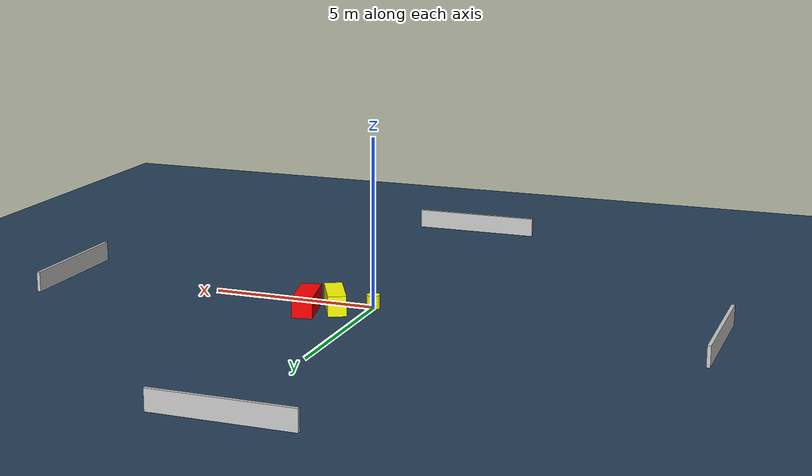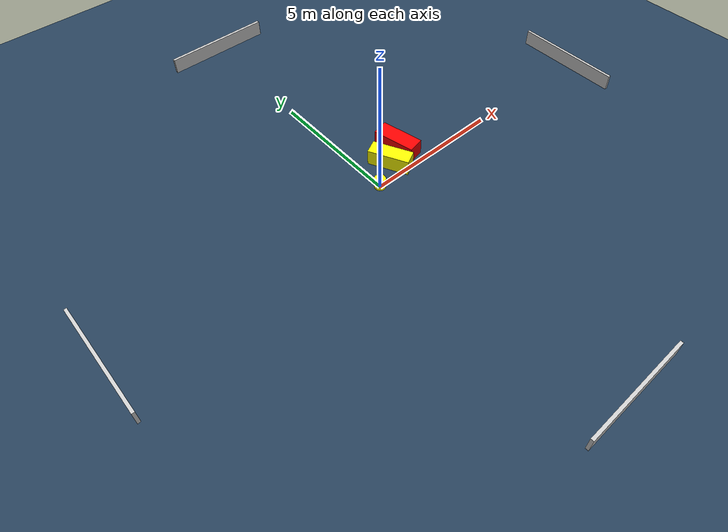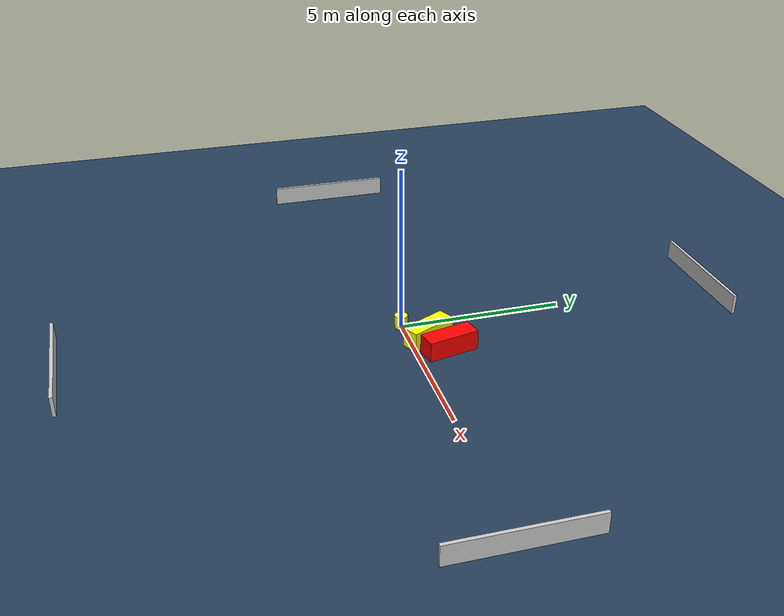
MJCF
<?xml version="1.0" ?>
<mujoco model="generated_environment">
  <option timestep="0.01" integrator="RK4" cone="elliptic"/>
  <default>
    <geom density="1"/>
  </default>
  <asset>
    <texture builtin="gradient" height="3072" name="skybox" rgb1="0.3 0.5 0.7" rgb2="0 0 0" type="skybox" width="512"/>
    <texture builtin="checker" height="300" name="groundplane" rgb1="0.2 0.3 0.4" rgb2="0.1 0.2 0.3" type="2d" width="300"/>
    <material name="groundplane" reflectance="0.2" texrepeat="5 5" texture="groundplane"/>
  </asset>
  <worldbody>
    <light dir="0 0 -1" directional="true" pos="0 0 1.5"/>
    <geom condim="3" friction="0.5 0.005 0.001" material="groundplane" name="floor" pos="0 0 0" size="0 0 0.05" type="plane"/>
    <body name="walls">
      <geom name="wall_1" condim="4" pos="-10.0 0.0 0.3" rgba="0.800000011920929 0.800000011920929 0.800000011920929 1.0" size="0.05 2.0 0.3" type="box"/>
      <geom name="wall_2" condim="4" pos="10.0 0.0 0.3" rgba="0.800000011920929 0.800000011920929 0.800000011920929 1.0" size="0.05 2.0 0.3" type="box"/>
      <geom name="wall_3" condim="4" pos="0.0 -10.0 0.3" rgba="0.800000011920929 0.800000011920929 0.800000011920929 1.0" size="2.0 0.05 0.3" type="box"/>
      <geom name="wall_4" condim="4" pos="0.0 10.0 0.3" rgba="0.800000011920929 0.800000011920929 0.800000011920929 1.0" size="2.0 0.05 0.3" type="box"/>
    </body>
    <body name="robot">
      <joint name="joint_x" type="slide" pos="0 0 0" axis="1 0 0"/>
      <joint name="joint_y" type="slide" pos="0 0 0" axis="0 1 0"/>
      <geom name="robot" type="cylinder" pos="0.0 0.0 0.2" size="0.2 0.2 0.0" mass="5.0" friction="1.0 0.005 0.0001" condim="4" rgba="1.0 1.0 0.0 1.0"/>
    </body>
    <body name="obstacle_1_movable">
      <geom name="obstacle_1_movable" condim="4" pos="0.9718861876789266 0.5529671237212697 0.3" euler="0 0 116.84193369798882" friction="0.0 0.005 0.001" rgba="1.0 1.0 0.0 1.0" size="0.7438888349818875 0.2675233430235515 0.3" type="box" mass="0.1"/>
      <joint type="free"/>
    </body>
    <body name="obstacle_2_static">
      <geom name="obstacle_2_static" condim="4" pos="1.6853485884240496 0.9630025147433849 0.3" euler="0 0 282.552966543695" friction="0.0 0.005 0.001" rgba="1.0 0.0 0.0 1.0" size="0.7825800760059978 0.29907236926781666 0.3" type="box"/>
    </body>
  </worldbody>
  <actuator>
    <motor name="actuator_x" joint="joint_x" gear="1" ctrlrange="-1 1"/>
    <motor name="actuator_y" joint="joint_y" gear="1" ctrlrange="-1 1"/>
  </actuator>
</mujoco>
